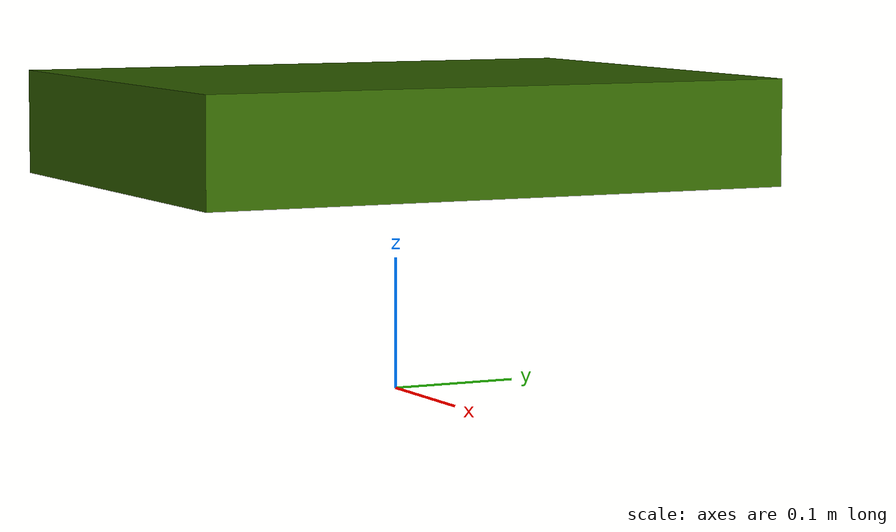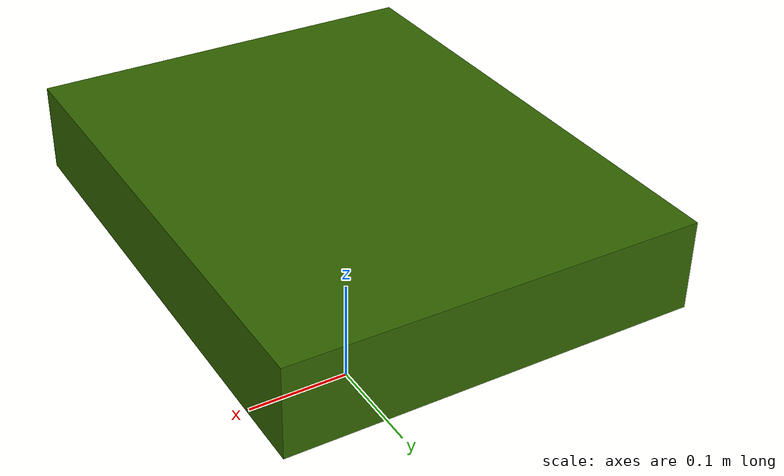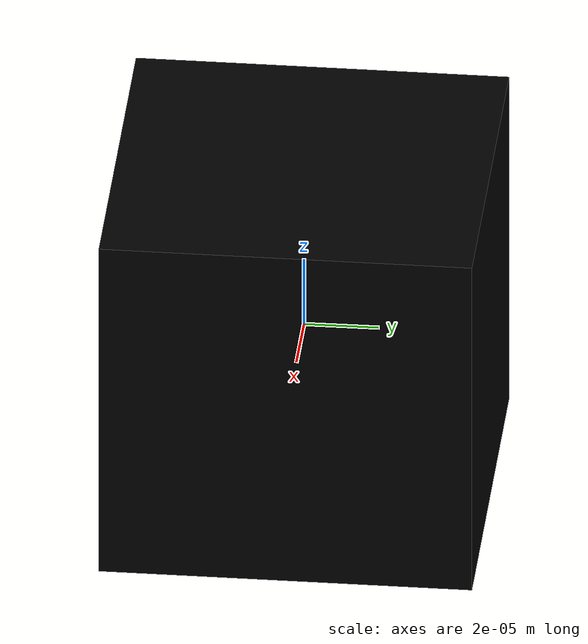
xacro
<?xml version="1.0" ?>
<robot name="base" xmlns:xacro="http://ros.org/wiki/xacro">

<!--xacro:property name="w_radius" value="${108.743/1e3}"/-->
<xacro:property name="w_radius" value="${80/1e3}"/>
<xacro:property name="chassis_height" value="${40/1e3}"/>

<link name="base_footprint">
    <visual>
        <geometry>
            <box size="0.0001 0.0001 0.0001"/>
        </geometry>
        <material name="transparente">
            <color rgba="0 0 0 0"/>
        </material>
    </visual>
</link>

<joint name="footprint_base_joint" type="fixed">
    <parent link="base_footprint"/>
    <child link="base_link"/>
    <origin xyz="0 0 ${w_radius*2 + chassis_height}" rpy="0 0 0"/>
</joint>

<!-- CHASIS -->
<link name="base_link">

    <inertial>
        <origin xyz="${0/1e3} 0 ${1.417/1000}" rpy="0 0 0"/>
        <mass value="5.771"/>
        <inertia ixx="${207161.695/(1e6)}"
                 ixy="${0}"                 iyy="${117325.409/(1e6)}"
                 ixz="${0}"                 iyz="${0}"                  izz="${320415.187/(1e6)}"/>
    </inertial>
    <visual>
        <origin xyz="0 0 0" rpy="0 0 0"/>
        <geometry>
            <box size="${360/1000} ${460/1000} ${80/1000}"/>
        </geometry>
        <material name="base_link_material">
            <color rgba="${51/255} ${102/255} ${0/255} 1"/>
        </material>
    </visual>
    <collision>
        <origin xyz="0 0 0" rpy="0 0 0"/>
        <geometry>
            <box size="${360/1000} ${460/1000} ${80/1000}"/>
        </geometry>
    </collision>

</link>

<gazebo reference="base_link">
    <material>Gazebo/Green</material>
</gazebo>

</robot>
